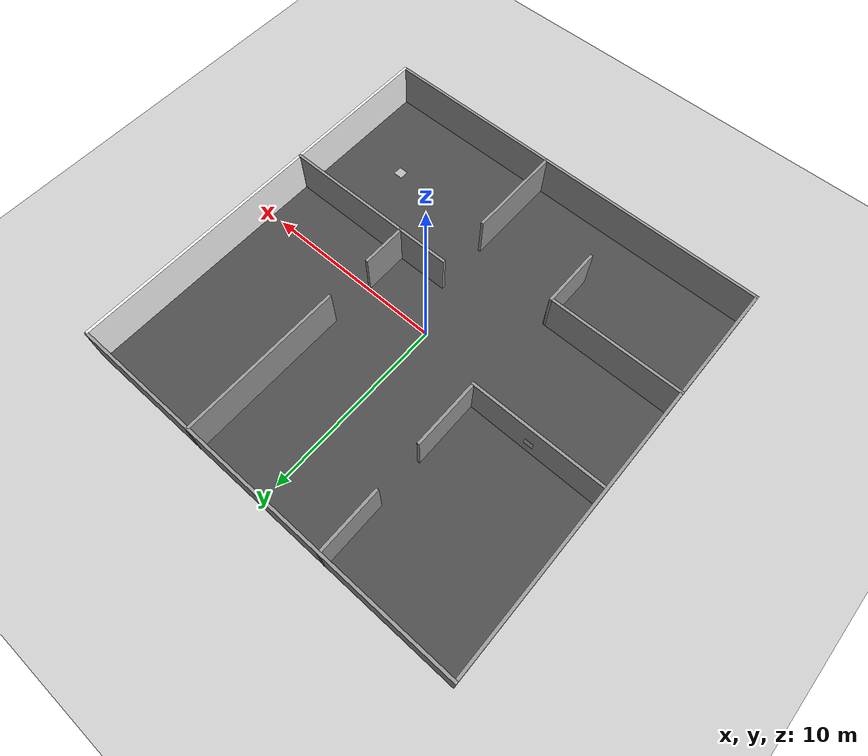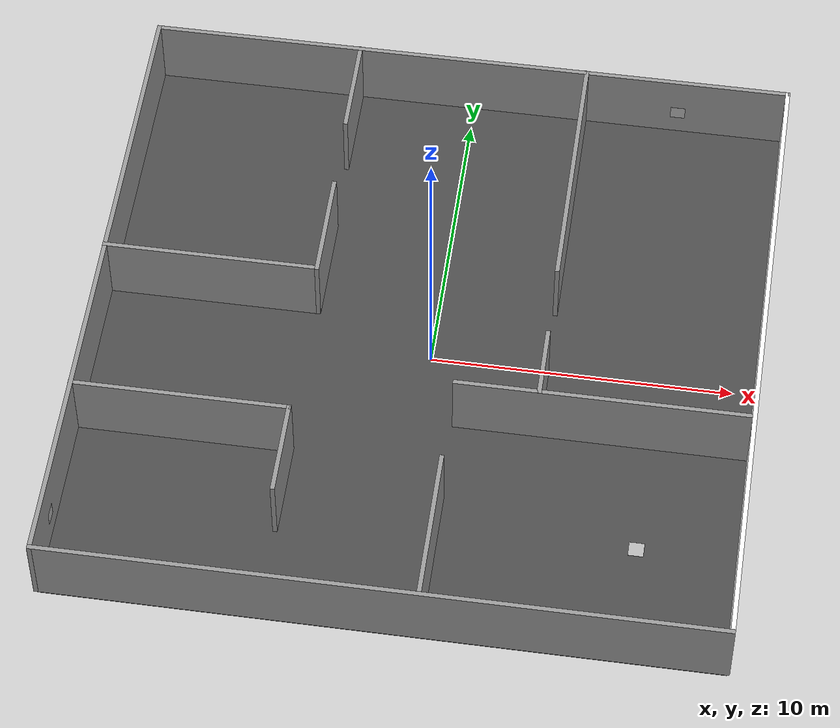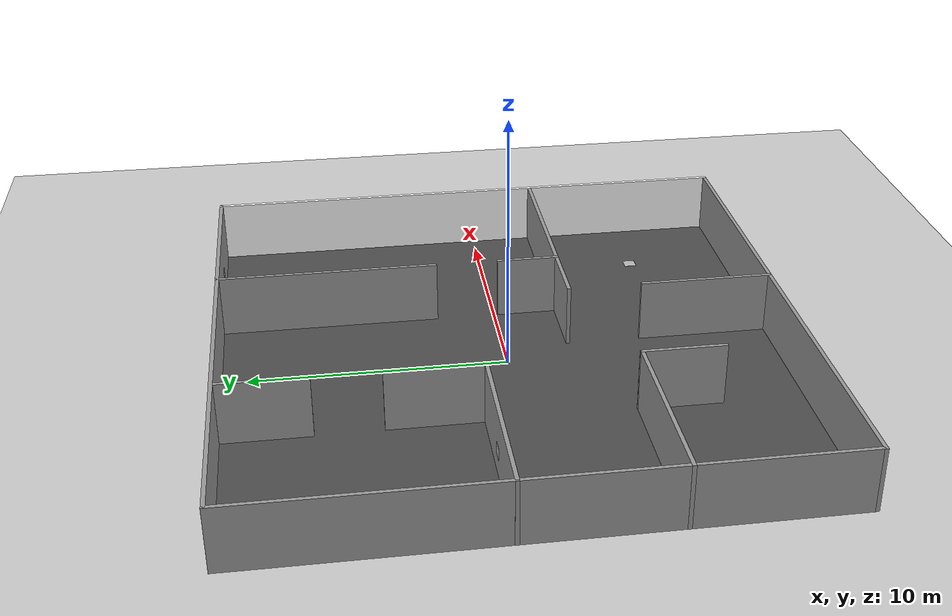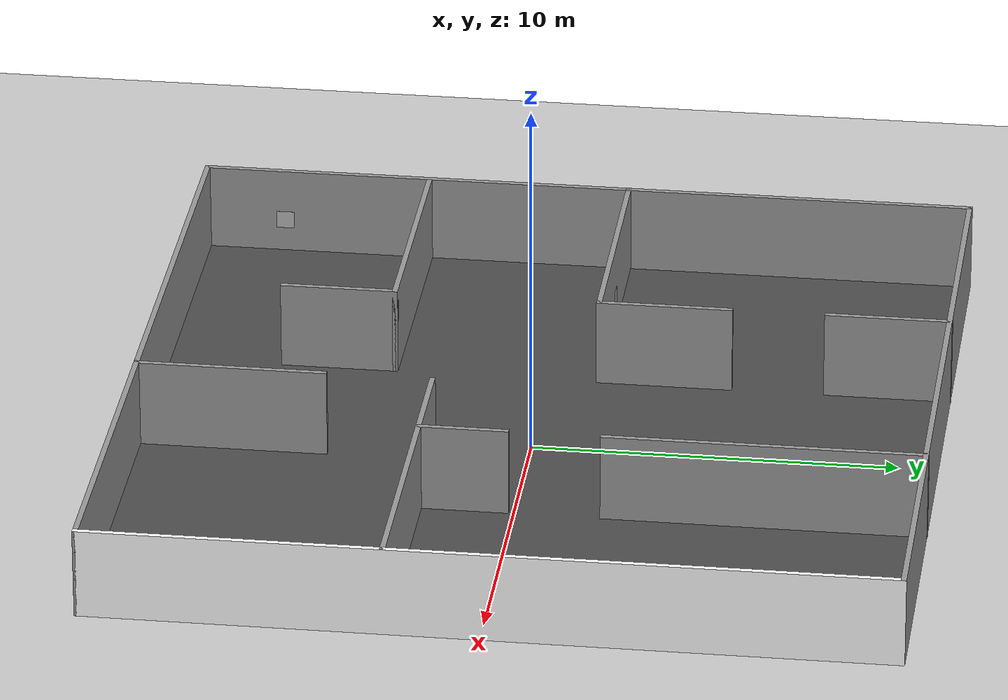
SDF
<sdf version="1.4">
 <world name="default">
  <light name="sun" type="directional">
   <pose>0 0 10 0 -0 0</pose>
   <diffuse>0.8 0.8 0.8 1</diffuse>
   <specular>0.2 0.2 0.2 1</specular>
   <attenuation>
    <range>1000</range>
    <constant>0.9</constant>
    <linear>0.01</linear>
    <quadratic>0.001</quadratic>
   </attenuation>
   <direction>-0.5 0.1 -0.9</direction>
   <spot><inner_angle>0</inner_angle><outer_angle>0</outer_angle><falloff>0</falloff></spot>
  </light>
  <model name="ground_plane">
   <static>1</static>
   <link name="link">
    <collision name="collision">
     <geometry><plane><normal>0 0 1</normal><size>100 100</size></plane></geometry>
     <surface>
      <contact><collide_bitmask>65535</collide_bitmask></contact>
      <friction><ode><mu>100</mu><mu2>50</mu2></ode></friction>
     </surface>
    </collision>
    <visual name="visual">
     <cast_shadows>0</cast_shadows>
     <geometry><plane><normal>0 0 1</normal><size>100 100</size></plane></geometry>
     <material>
      <script><uri>file://media/materials/scripts/gazebo.material</uri><name>Gazebo/Grey</name></script>
     </material>
    </visual>
   </link>
  </model>
  <physics type="ode">
   <gravity>0 0 -9.81</gravity>
   <real_time_update_rate>1000.0</real_time_update_rate>
   <max_step_size>0.001</max_step_size>
   <real_time_factor>1</real_time_factor>
   <ode>
    <solver>
     <type>quick</type>
     <iters>150</iters>
     <precon_iters>0</precon_iters>
     <sor>1.400000</sor>
     <use_dynamic_moi_rescaling>1</use_dynamic_moi_rescaling>
    </solver>
    <constraints>
     <cfm>0.00001</cfm>
     <erp>0.2</erp>
     <contact_max_correcting_vel>100.0</contact_max_correcting_vel>
     <contact_surface_layer>0.01000</contact_surface_layer>
    </constraints>
   </ode>
  </physics>
  <scene><ambient>0.4 0.4 0.4 1</ambient><background>0.7 0.7 0.7 1</background><shadows>1</shadows></scene>
  <spherical_coordinates>
   <surface_model>EARTH_WGS84</surface_model>
   <latitude_deg>0</latitude_deg>
   <longitude_deg>0</longitude_deg>
   <elevation>0</elevation>
   <heading_deg>0</heading_deg>
  </spherical_coordinates>
  <model name="The_Construct">
   <pose>-0.1623 0.202521 0 0 -0 0</pose>
   <link name="Wall_65">
    <collision name="Wall_65_Collision">
     <geometry><box><size>21.75 0.15 2.5</size></box></geometry>
     <pose>0 0 1.25 0 -0 0</pose>
    </collision>
    <visual name="Wall_65_Visual">
     <pose>0 0 1.25 0 -0 0</pose>
     <geometry><box><size>21.75 0.15 2.5</size></box></geometry>
     <material>
      <script><uri>file://media/materials/scripts/gazebo.material</uri><name>Gazebo/Tile"</name></script>
      <ambient>1 1 1 1</ambient>
     </material>
     <meta><layer>0</layer></meta>
    </visual>
    <pose>10.9276 -0.00501 0 0 -0 -1.5708</pose>
   </link>
   <link name="Wall_68">
    <collision name="Wall_68_Collision">
     <geometry><box><size>22 0.15 2.5</size></box></geometry>
     <pose>0 0 1.25 0 -0 0</pose>
    </collision>
    <visual name="Wall_68_Visual">
     <pose>0 0 1.25 0 -0 0</pose>
     <geometry><box><size>22 0.15 2.5</size></box></geometry>
     <material>
      <script><uri>file://media/materials/scripts/gazebo.material</uri><name>Gazebo/Grey</name></script>
      <ambient>1 1 1 1</ambient>
     </material>
     <meta><layer>0</layer></meta>
    </visual>
    <pose>0.002564 -10.805 0 0 -0 3.14159</pose>
   </link>
   <link name="Wall_69">
    <collision name="Wall_69_Collision">
     <geometry><box><size>21.75 0.15 2.5</size></box></geometry>
     <pose>0 0 1.25 0 -0 0</pose>
    </collision>
    <visual name="Wall_69_Visual">
     <pose>0 0 1.25 0 -0 0</pose>
     <geometry><box><size>21.75 0.15 2.5</size></box></geometry>
     <material>
      <script><uri>file://media/materials/scripts/gazebo.material</uri><name>Gazebo/Grey</name></script>
      <ambient>1 1 1 1</ambient>
     </material>
     <meta><layer>0</layer></meta>
    </visual>
    <pose>-10.9224 -0.00501 0 0 -0 1.5708</pose>
   </link>
   <link name="Wall_70">
    <collision name="Wall_70_Collision">
     <geometry><box><size>22 0.15 2.5</size></box></geometry>
     <pose>0 0 1.25 0 -0 0</pose>
    </collision>
    <visual name="Wall_70_Visual">
     <pose>0 0 1.25 0 -0 0</pose>
     <geometry><box><size>22 0.15 2.5</size></box></geometry>
     <material>
      <script><uri>file://media/materials/scripts/gazebo.material</uri><name>Gazebo/Grey</name></script>
      <ambient>1 1 1 1</ambient>
     </material>
     <meta><layer>0</layer></meta>
    </visual>
    <pose>0.002564 10.795 0 0 -0 0</pose>
   </link>
   <link name="Wall_72">
    <collision name="Wall_72_Collision">
     <geometry><box><size>7.25 0.15 2.5</size></box></geometry>
     <pose>0 0 1.25 0 -0 0</pose>
    </collision>
    <visual name="Wall_72_Visual">
     <pose>0 0 1.25 0 -0 0</pose>
     <geometry><box><size>7.25 0.15 2.5</size></box></geometry>
     <material>
      <script><uri>file://media/materials/scripts/gazebo.material</uri><name>Gazebo/Grey</name></script>
      <ambient>1 1 1 1</ambient>
     </material>
     <meta><layer>0</layer></meta>
    </visual>
    <pose>-7.37656 -4.46652 0 0 -0 0</pose>
   </link>
   <link name="Wall_73">
    <collision name="Wall_73_Collision">
     <geometry><box><size>3.25 0.15 2.5</size></box></geometry>
     <pose>0 0 1.25 0 -0 0</pose>
    </collision>
    <visual name="Wall_73_Visual">
     <pose>0 0 1.25 0 -0 0</pose>
     <geometry><box><size>3.25 0.15 2.5</size></box></geometry>
     <material>
      <script><uri>file://media/materials/scripts/gazebo.material</uri><name>Gazebo/Grey</name></script>
      <ambient>1 1 1 1</ambient>
     </material>
     <meta><layer>0</layer></meta>
    </visual>
    <pose>-3.82656 -6.01652 0 0 -0 -1.5708</pose>
   </link>
   <link name="Wall_75">
    <collision name="Wall_75_Collision">
     <geometry><box><size>9.75 0.15 2.5</size></box></geometry>
     <pose>0 0 1.25 0 -0 0</pose>
    </collision>
    <visual name="Wall_75_Visual">
     <pose>0 0 1.25 0 -0 0</pose>
     <geometry><box><size>9.75 0.15 2.5</size></box></geometry>
     <material>
      <script><uri>file://media/materials/scripts/gazebo.material</uri><name>Gazebo/Grey</name></script>
      <ambient>1 1 1 1</ambient>
     </material>
     <meta><layer>0</layer></meta>
    </visual>
    <pose>6.09315 -2.74513 0 0 -0 3.14159</pose>
   </link>
   <link name="Wall_77">
    <collision name="Wall_77_Collision">
     <geometry><box><size>5.25 0.15 2.5</size></box></geometry>
     <pose>0 0 1.25 0 -0 0</pose>
    </collision>
    <visual name="Wall_77_Visual">
     <pose>0 0 1.25 0 -0 0</pose>
     <geometry><box><size>5.25 0.15 2.5</size></box></geometry>
     <material>
      <script><uri>file://media/materials/scripts/gazebo.material</uri><name>Gazebo/Grey</name></script>
      <ambient>1 1 1 1</ambient>
     </material>
     <meta><layer>0</layer></meta>
    </visual>
    <pose>1.2627 -8.24377 0 0 -0 1.5708</pose>
   </link>
   <link name="Wall_81">
    <collision name="Wall_81_Collision">
     <geometry><box><size>7.25 0.15 2.5</size></box></geometry>
     <pose>0 0 1.25 0 -0 0</pose>
    </collision>
    <visual name="Wall_81_Visual">
     <pose>0 0 1.25 0 -0 0</pose>
     <geometry><box><size>7.25 0.15 2.5</size></box></geometry>
     <material>
      <script><uri>file://media/materials/scripts/gazebo.material</uri><name>Gazebo/Grey</name></script>
      <ambient>1 1 1 1</ambient>
     </material>
     <meta><layer>0</layer></meta>
    </visual>
    <pose>-7.37756 1.18235 0 0 -0 0</pose>
   </link>
   <link name="Wall_82">
    <collision name="Wall_82_Collision">
     <geometry><box><size>3.75 0.15 2.5</size></box></geometry>
     <pose>0 0 1.25 0 -0 0</pose>
    </collision>
    <visual name="Wall_82_Visual">
     <pose>0 0 1.25 0 -0 0</pose>
     <geometry><box><size>3.75 0.15 2.5</size></box></geometry>
     <material>
      <script><uri>file://media/materials/scripts/gazebo.material</uri><name>Gazebo/Grey</name></script>
      <ambient>1 1 1 1</ambient>
     </material>
     <meta><layer>0</layer></meta>
    </visual>
    <pose>-3.82756 2.98235 0 0 -0 1.5708</pose>
   </link>
   <link name="Wall_85">
    <collision name="Wall_85_Collision">
     <geometry><box><size>3.5 0.15 2.5</size></box></geometry>
     <pose>0 0 1.25 0 -0 0</pose>
    </collision>
    <visual name="Wall_85_Visual">
     <pose>0 0 1.25 0 -0 0</pose>
     <geometry><box><size>3.5 0.15 2.5</size></box></geometry>
     <material>
      <script><uri>file://media/materials/scripts/gazebo.material</uri><name>Gazebo/Grey</name></script>
      <ambient>1 1 1 1</ambient>
     </material>
     <meta><layer>0</layer></meta>
    </visual>
    <pose>-3.85256 9.13001 0 0 -0 -1.5708</pose>
   </link>
   <link name="Wall_90">
    <collision name="Wall_90_Collision">
     <geometry><box><size>2.5 0.15 2.5</size></box></geometry>
     <pose>0 0 1.25 0 -0 0</pose>
    </collision>
    <visual name="Wall_90_Visual">
     <pose>0 0 1.25 0 -0 0</pose>
     <geometry><box><size>2.5 0.15 2.5</size></box></geometry>
     <material>
      <script><uri>file://media/materials/scripts/gazebo.material</uri><name>Gazebo/Grey</name></script>
      <ambient>1 1 1 1</ambient>
     </material>
     <meta><layer>0</layer></meta>
    </visual>
    <pose>4.01231 -1.56999 0 0 -0 -1.5708</pose>
   </link>
   <link name="Wall_93">
    <collision name="Wall_93_Collision">
     <geometry><box><size>8.75 0.15 2.5</size></box></geometry>
     <pose>0 0 1.25 0 -0 0</pose>
    </collision>
    <visual name="Wall_93_Visual">
     <pose>0 0 1.25 0 -0 0</pose>
     <geometry><box><size>8.75 0.15 2.5</size></box></geometry>
     <material>
      <script><uri>file://media/materials/scripts/gazebo.material</uri><name>Gazebo/Grey</name></script>
      <ambient>1 1 1 1</ambient>
     </material>
     <meta><layer>0</layer></meta>
    </visual>
    <pose>4.01231 6.50501 0 0 -0 1.5708</pose>
   </link>
   <static>1</static>
  </model>
  <model name="marker-20">
   <static>0</static>
   <link name="marker">
    <gravity>0</gravity>
    <visual name="visual">
     <geometry><box><size>0.5 0.5 0.001</size></box></geometry>
     <material>
      <script>
       <uri>model://marker-20_massless/material/scripts</uri>
       <uri>model://marker-20_massless/material/textures</uri>
       <name>Aruco/marker-20</name>
      </script>
     </material>
    </visual>
    <collision name="collision"><geometry><box><size>0.5 0.5 0.001</size></box></geometry></collision>
    <inertial>
     <inertia><ixx>1</ixx><ixy>0</ixy><ixz>0</ixz><iyy>1</iyy><iyz>0</iyz><izz>1</izz></inertia>
     <mass>1</mass>
    </inertial>
   </link>
   <pose>-7.28526 1.46203 0.99349 1.57 -0 0</pose>
  </model>
  <model name="marker-10">
   <static>0</static>
   <link name="marker">
    <gravity>0</gravity>
    <visual name="visual">
     <geometry><box><size>0.5 0.5 0.001</size></box></geometry>
     <material>
      <script>
       <uri>model://marker-10_massless/material/scripts</uri>
       <uri>model://marker-10_massless/material/textures</uri>
       <name>Aruco/marker-10</name>
      </script>
     </material>
    </visual>
    <collision name="collision"><geometry><box><size>0.5 0.5 0.001</size></box></geometry></collision>
    <inertial>
     <inertia><ixx>1</ixx><ixy>0</ixy><ixz>0</ixz><iyy>1</iyy><iyz>0</iyz><izz>1</izz></inertia>
     <mass>1</mass>
    </inertial>
   </link>
   <pose>7.08105 10.9206 0.999374 1.57 -0 0</pose>
  </model>
  <model name="marker-30">
   <static>0</static>
   <link name="marker">
    <gravity>0</gravity>
    <visual name="visual">
     <geometry><box><size>0.5 0.5 0.001</size></box></geometry>
     <material>
      <script>
       <uri>model://marker-30_massless/material/scripts</uri>
       <uri>model://marker-30_massless/material/textures</uri>
       <name>Aruco/marker-30</name>
      </script>
     </material>
    </visual>
    <collision name="collision"><geometry><box><size>0.5 0.5 0.001</size></box></geometry></collision>
    <inertial>
     <inertia><ixx>1</ixx><ixy>0</ixy><ixz>0</ixz><iyy>1</iyy><iyz>0</iyz><izz>1</izz></inertia>
     <mass>1</mass>
    </inertial>
   </link>
   <pose>-11.0072 -8.38921 0.996562 1.57 -0 1.57</pose>
  </model>
  <model name="marker-40">
   <static>0</static>
   <link name="marker">
    <gravity>0</gravity>
    <visual name="visual">
     <geometry><box><size>0.5 0.5 0.001</size></box></geometry>
     <material>
      <script>
       <uri>model://marker-40_massless/material/scripts</uri>
       <uri>model://marker-40_massless/material/textures</uri>
       <name>Aruco/marker-40</name>
      </script>
     </material>
    </visual>
    <collision name="collision"><geometry><box><size>0.5 0.5 0.001</size></box></geometry></collision>
    <inertial>
     <inertia><ixx>1</ixx><ixy>0</ixy><ixz>0</ixz><iyy>1</iyy><iyz>0</iyz><izz>1</izz></inertia>
     <mass>1</mass>
    </inertial>
   </link>
   <pose>7.5 -6.5 0.05 0 -0 0</pose>
  </model>
  <model name="floor">
   <static>1</static>
   <link name="link">
    <collision name="collision"><geometry><box><size>100 100 0.1</size></box></geometry></collision>
    <visual name="visual">
     <cast_shadows>0</cast_shadows>
     <geometry><box><size>21.8 21.6 0.1</size></box></geometry>
     <material>
      <script>
       <uri>model://floor/materials/scripts</uri>
       <uri>model://floor/materials/textures</uri>
       <name>vrc/asphalt</name>
      </script>
     </material>
    </visual>
   </link>
   <pose>-0.132678 0.126622 -0.001 0 -0 0</pose>
  </model>
 </world>
</sdf>
